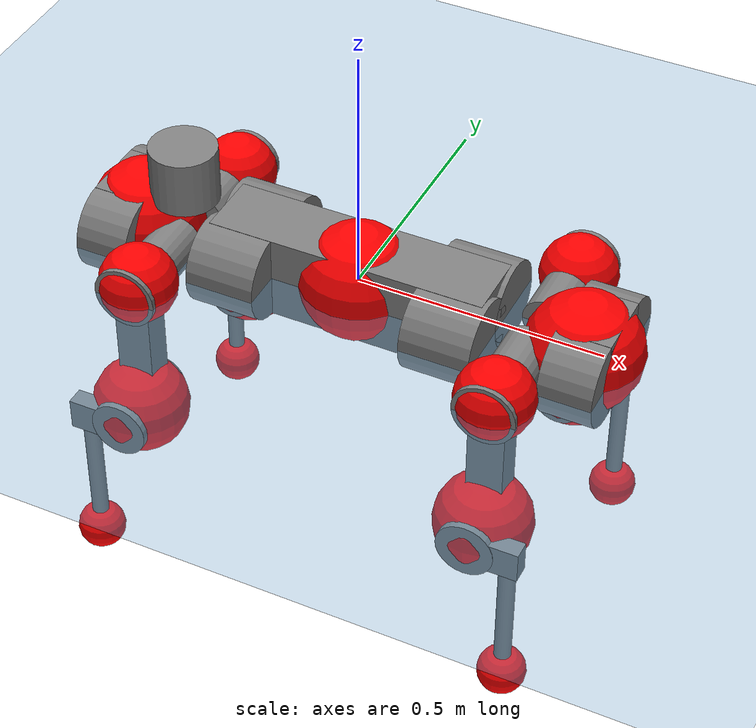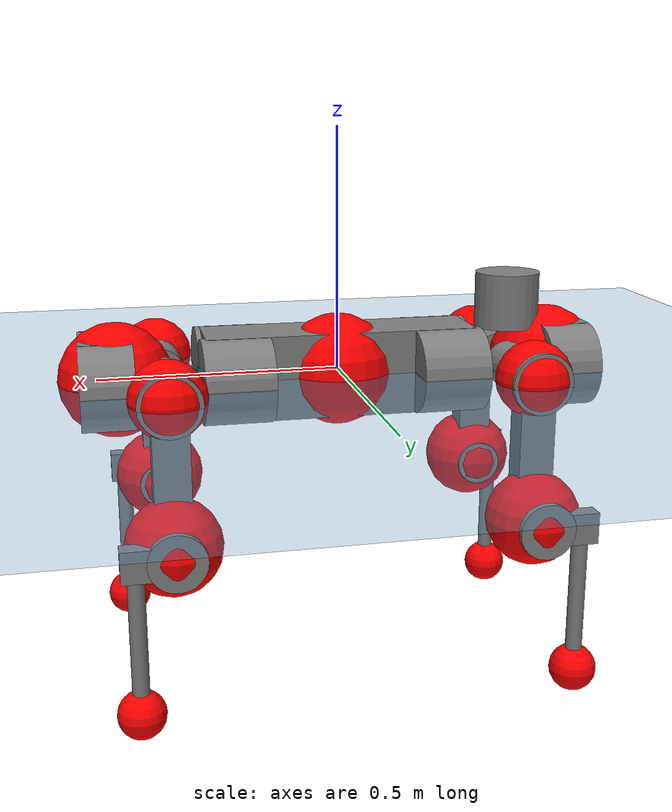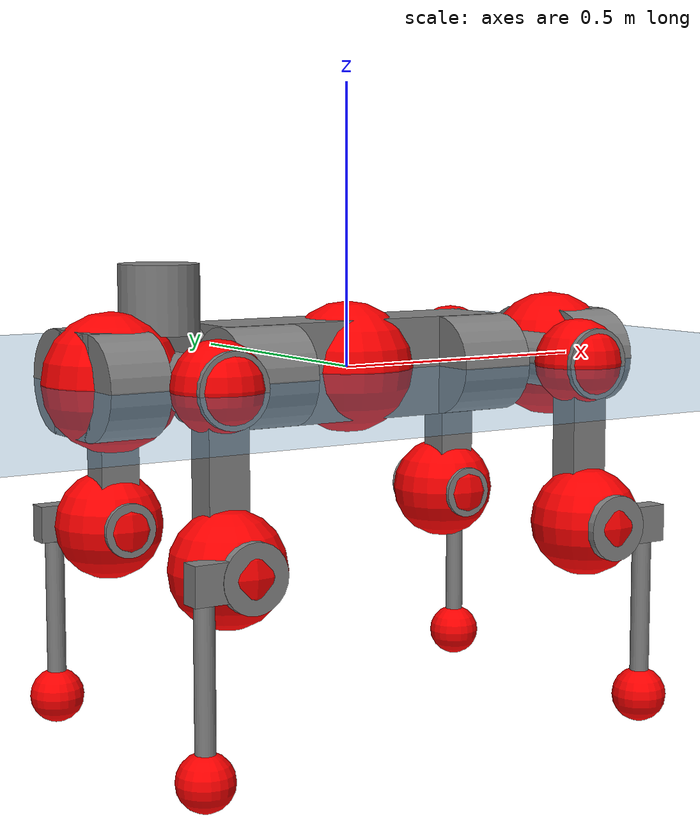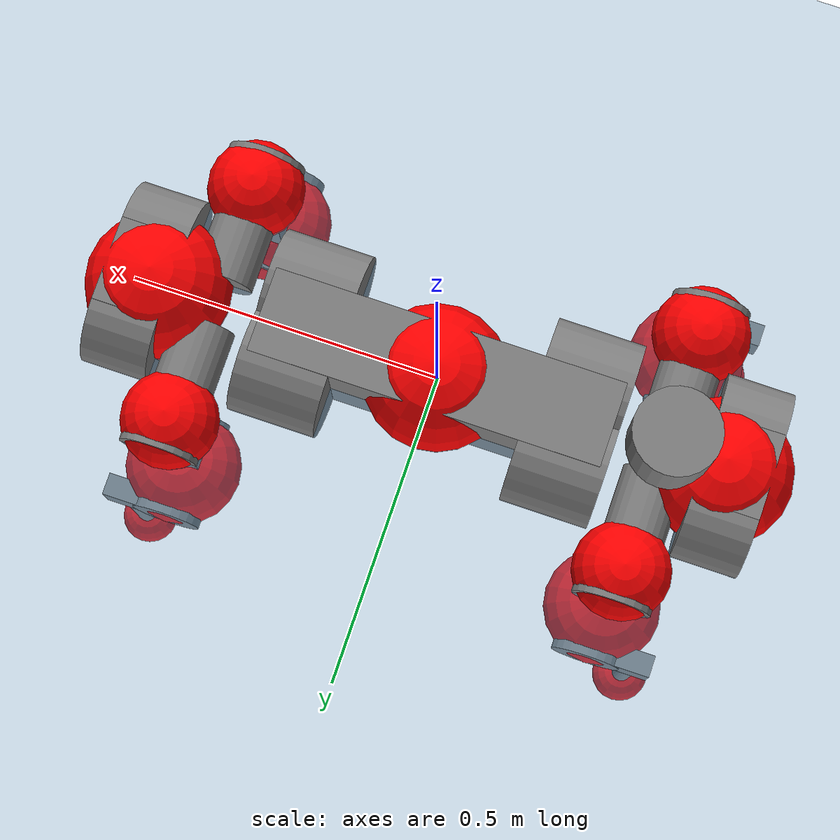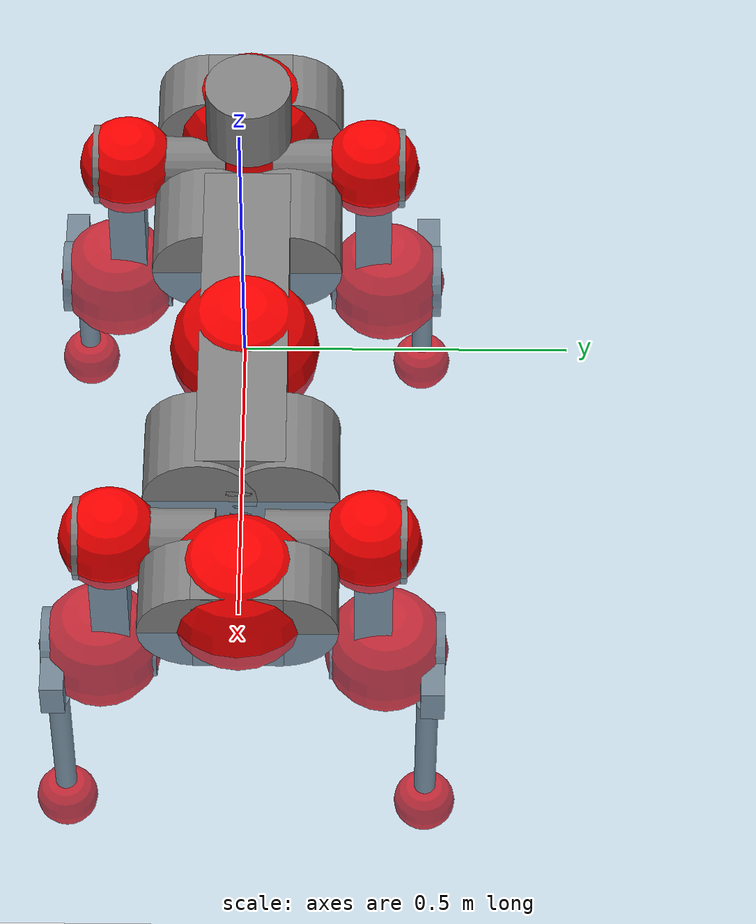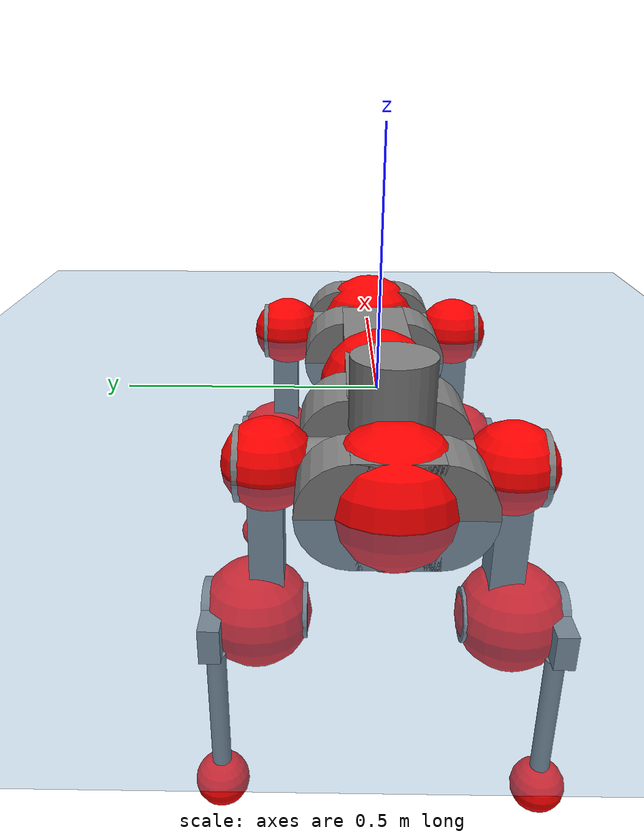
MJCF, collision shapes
<mujoco model="anymal_c">
  <compiler angle="radian" assetdir="assets" balanceinertia="true" inertiafromgeom="false"/>

  <option timestep="0.005" density="1.2" viscosity="2e-05"/>

  <size nkey="1"/>

  <visual>
    <quality shadowsize="8192"/>
    <map shadowclip="0.5"/>
  </visual>

  <default>
    <default class="/">
      <material specular="0" shininess="0.25"/>
      <geom contype="0" conaffinity="0" group="1" solref="-1000 -80"/>
      <site size="0.01 0.005 0.005" group="5"/>
      <general forcelimited="true" forcerange="-80 80" biastype="affine" gainprm="80" biasprm="0 -80 -2"/>
      <default class="anymal_c">
        <joint armature="0.01" damping="0.01" frictionloss="0.1"/>
        <default class="visual">
          <geom type="mesh" group="2"/>
          <default class="visual_zflip"/>
        </default>
        <default class="collision">
          <geom type="cylinder" group="3"/>
          <default class="foot">
            <geom size="0.03 0 0" type="sphere" condim="6" priority="1" friction="0.8 0.02 0.01" solimp="0.015 1 0.03"/>
          </default>
        </default>
      </default>
      <default class="reward_collision_sphere">
        <geom group="5" rgba="1 0 0 1"/>
      </default>
    </default>
  </default>

  <asset>
    <texture type="skybox" colorspace="auto" name="//unnamed_texture_0" builtin="gradient" rgb1="0.95 0.95 0.95" rgb2="0.95 0.95 0.95" width="100" height="600"/>
    <texture type="2d" colorspace="auto" name="texplane" builtin="checker" rgb1="0.345 0.575 0.748" rgb2="0.345 0.575 0.748" markrgb="1 1 1" width="512" height="512"/>
    <texture type="2d" colorspace="linear" name="base" file="base.png"/>
    <texture type="2d" colorspace="linear" name="top_shell" file="top_shell.png"/>
    <texture type="2d" colorspace="linear" name="bottom_shell" file="bottom_shell.png"/>
    <texture type="2d" colorspace="linear" name="remote" file="remote.png"/>
    <texture type="2d" colorspace="linear" name="hatch" file="hatch.png"/>
    <texture type="2d" colorspace="linear" name="handle" file="handle.png"/>
    <texture type="2d" colorspace="linear" name="face" file="face.png"/>
    <texture type="2d" colorspace="linear" name="battery" file="battery.png"/>
    <texture type="2d" colorspace="linear" name="lidar_cage" file="lidar_cage.png"/>
    <texture type="2d" colorspace="linear" name="depth_camera" file="depth_camera.png"/>
    <texture type="2d" colorspace="linear" name="wide_angle_camera" file="wide_angle_camera.png"/>
    <texture type="2d" colorspace="linear" name="lidar" file="lidar.png"/>
    <texture type="2d" colorspace="linear" name="drive" file="drive.png"/>
    <texture type="2d" colorspace="linear" name="hip_l" file="hip_l.png"/>
    <texture type="2d" colorspace="linear" name="shank_l" file="shank_l.png"/>
    <texture type="2d" colorspace="linear" name="foot" file="foot.png"/>
    <texture type="2d" colorspace="linear" name="thigh" file="thigh.png"/>
    <texture type="2d" colorspace="linear" name="shank_r" file="shank_r.png"/>
    <texture type="2d" colorspace="linear" name="hip_r" file="hip_r.png"/>
    <material name="MatPlane" class="/" texture="texplane" texuniform="true" texrepeat="2 2" specular="0.9" shininess="0.5"/>
    <material name="black_plastic" class="/" rgba="0.007 0.007 0.007 1"/>
    <material name="green" class="/" rgba="0.052 0.178 0.033 1"/>
    <material name="red" class="/" rgba="0.178 0.006 0.005 1"/>
    <material name="yellow" class="/" rgba="0.178 0.119 0.006 1"/>
    <material name="lwl" class="/" rgba="0.8 0.8 0.8 1"/>
    <material name="base" class="/" texture="base"/>
    <material name="top_shell" class="/" texture="top_shell"/>
    <material name="bottom_shell" class="/" texture="bottom_shell"/>
    <material name="hip_l" class="/" texture="hip_l"/>
    <material name="thigh" class="/" texture="thigh"/>
    <material name="shank_l" class="/" texture="shank_l"/>
    <material name="foot" class="/" texture="foot"/>
    <material name="hip_r" class="/" texture="hip_r"/>
    <material name="shank" class="/" texture="shank_r"/>
    <material name="hatch" class="/" texture="hatch"/>
    <material name="remote" class="/" texture="remote"/>
    <material name="handle" class="/" texture="handle"/>
    <material name="face" class="/" texture="face"/>
    <material name="depth_camera" class="/" texture="depth_camera"/>
    <material name="wide_angle_camera" class="/" texture="wide_angle_camera"/>
    <material name="battery" class="/" texture="battery"/>
    <material name="lidar_cage" class="/" texture="lidar_cage"/>
    <material name="lidar" class="/" texture="lidar"/>
    <material name="drive" class="/" texture="drive"/>
    <mesh name="base_0" class="/" file="base_0.obj"/>
    <mesh name="base_1" class="/" file="base_1.obj"/>
    <mesh name="base_2" class="/" file="base_2.obj"/>
    <mesh name="base_3" class="/" file="base_3.obj"/>
    <mesh name="base_4" class="/" file="base_4.obj"/>
    <mesh name="base_5" class="/" file="base_5.obj"/>
    <mesh name="top_shell" class="/" file="top_shell.obj"/>
    <mesh name="bottom_shell" class="/" file="bottom_shell.obj"/>
    <mesh name="remote" class="/" file="remote.obj"/>
    <mesh name="handle" class="/" file="handle.obj"/>
    <mesh name="face" class="/" file="face.obj"/>
    <mesh name="wide_angle_camera" class="/" file="wide_angle_camera.obj"/>
    <mesh name="depth_camera" class="/" file="depth_camera.obj"/>
    <mesh name="battery" class="/" file="battery.obj"/>
    <mesh name="lidar_cage" class="/" file="lidar_cage.obj"/>
    <mesh name="lidar" class="/" file="lidar.obj"/>
    <mesh name="drive" class="/" file="drive.obj"/>
    <mesh name="hip_l" class="/" file="hip_l.obj"/>
    <mesh name="thigh" class="/" file="thigh.obj"/>
    <mesh name="shank_l" class="/" file="shank_l.obj"/>
    <mesh name="foot" class="/" file="foot.obj"/>
    <mesh name="hip_r" class="/" file="hip_r.obj"/>
    <mesh name="hatch" class="/" file="hatch.obj"/>
    <mesh name="shank_r" class="/" file="shank_r.obj"/>
  </asset>

  <worldbody>
    <geom name="floor" class="/" size="100 100 0.125" type="plane" group="0" material="MatPlane"/>
    <light name="toplight_shadow" class="/" pos="0 0 5" dir="0.0990148 0.0990148 -0.990148" type="directional" ambient="0.04 0.04 0.04" diffuse="0.55 0.55 0.55" specular="0.12 0.12 0.12"/>
    <light name="toplight_fill" class="/" pos="0 0 5" dir="0.0990148 0.0990148 -0.990148" type="directional" castshadow="false" ambient="0.04 0.04 0.04" diffuse="0.3 0.3 0.3" specular="0.08 0.08 0.08"/>
    <body name="trunk" childclass="anymal_c" pos="0.000535623 -0.00062427 0.000172419" quat="1 7.09473e-05 -1.20096e-05 0.000133363">
      <inertial pos="0.00237637 -0.000629286 0.0495094" quat="0.501724 0.498639 0.50287 0.496743" mass="17.4039" diaginertia="0.722124 0.351128 0.224415"/>
      <joint name="//unnamed_joint_0" type="free" armature="0" damping="0" frictionloss="0"/>
      <geom name="//unnamed_geom_1" class="visual" material="green" mesh="base_0"/>
      <geom name="//unnamed_geom_2" class="visual" material="yellow" mesh="base_1"/>
      <geom name="//unnamed_geom_3" class="visual" material="red" mesh="base_2"/>
      <geom name="//unnamed_geom_4" class="visual" material="black_plastic" mesh="base_3"/>
      <geom name="//unnamed_geom_5" class="visual" material="lwl" mesh="base_4"/>
      <geom name="//unnamed_geom_6" class="visual" material="base" mesh="base_5"/>
      <geom name="trunk_1" class="collision" size="0.282636 0.0682225 0.0877146" type="box"/>
      <geom name="trunk_2" class="collision" size="0.0877146 0.070659" pos="0.222669 0.0625441 0" quat="0.707107 0 0.707107 0"/>
      <geom name="trunk_3" class="collision" size="0.0877146 0.070659" pos="-0.222669 0.0625441 0" quat="0.707107 0 0.707107 0"/>
      <geom name="trunk_4" class="collision" size="0.0877146 0.070659" pos="0.222669 -0.0625441 0" quat="0.707107 0 0.707107 0"/>
      <geom name="trunk_5" class="collision" size="0.0877146 0.070659" pos="-0.222669 -0.0625441 0" quat="0.707107 0 0.707107 0"/>
      <geom name="//unnamed_geom_12" class="visual" material="top_shell" mesh="top_shell"/>
      <geom name="//unnamed_geom_13" class="visual" material="bottom_shell" mesh="bottom_shell"/>
      <geom name="//unnamed_geom_14" class="visual" material="remote" mesh="remote"/>
      <geom name="//unnamed_geom_15" class="visual" material="handle" mesh="handle"/>
      <geom name="//unnamed_geom_16" class="visual" pos="0.424351 0 0" quat="1 0 0 0" material="face" mesh="face"/>
      <geom name="trunk_6" class="collision" size="0.0536034 0.0682225 0.0877146" pos="0.480658 0 0" type="box"/>
      <geom name="//unnamed_geom_18" class="collision" size="0.0877146 0.0536034" pos="0.480658 0.0625441 0" quat="0.707107 0 0.707107 0"/>
      <geom name="//unnamed_geom_19" class="collision" size="0.0877146 0.0536034" pos="0.480658 -0.0625441 0" quat="0.707107 0 0.707107 0"/>
      <geom name="//unnamed_geom_20" class="visual" pos="0.472621 0 -0.0292611" quat="0.965926 0 0.258819 0" material="depth_camera" mesh="depth_camera"/>
      <geom name="//unnamed_geom_21" class="visual" pos="0.525192 0 0.0150683" material="wide_angle_camera" mesh="wide_angle_camera"/>
      <geom name="//unnamed_geom_22" class="visual_zflip" pos="-0.424351 0 0" quat="0 0 0 1" material="face" mesh="face"/>
      <geom name="trunk_7" class="collision" size="0.0536034 0.0682225 0.0877146" pos="-0.480658 0 0" quat="0 0 0 1" type="box"/>
      <geom name="//unnamed_geom_24" class="collision" size="0.0877146 0.0536034" pos="-0.480658 -0.0625441 0" quat="0 -0.707107 0 0.707107"/>
      <geom name="//unnamed_geom_25" class="collision" size="0.0877146 0.0536034" pos="-0.480658 0.0625441 0" quat="0 -0.707107 0 0.707107"/>
      <geom name="//unnamed_geom_26" class="visual" pos="-0.472621 0 -0.0292611" quat="0 -0.258819 0 0.965926" material="depth_camera" mesh="depth_camera"/>
      <geom name="//unnamed_geom_27" class="visual_zflip" pos="-0.525192 0 0.0150683" quat="0 0 0 1" material="wide_angle_camera" mesh="wide_angle_camera"/>
      <geom name="//unnamed_geom_28" class="visual" material="battery" mesh="battery"/>
      <geom name="//unnamed_geom_29" class="visual" pos="0 0.0666058 0.0293715" quat="0.683013 -0.183013 0.183013 0.683013" material="depth_camera" mesh="depth_camera"/>
      <geom name="//unnamed_geom_30" class="visual" pos="0 -0.0666058 0.0293715" quat="0.683013 0.183013 0.183013 -0.683013" material="depth_camera" mesh="depth_camera"/>
      <geom name="//unnamed_geom_31" class="visual" pos="-0.372651 0 0.0739827" quat="1 0 0 0" material="lidar_cage" mesh="lidar_cage"/>
      <geom name="trunk_8" class="collision" size="0.0682225 0.0584764" pos="-0.372651 0 0.134377"/>
      <geom name="//unnamed_geom_33" class="visual" pos="-0.372651 -5.11829e-05 0.143134" quat="0.707107 0 0 -0.707107" material="lidar" mesh="lidar"/>
      <geom name="//unnamed_geom_34" class="visual" pos="0.307027 0.0929629 -1.95065e-09" quat="0.258819 0.965926 0 0" material="drive" mesh="drive"/>
      <geom name="//unnamed_geom_35" class="visual" pos="0.307027 -0.0929629 1.95065e-09" quat="0.258819 -0.965926 0 0" material="drive" mesh="drive"/>
      <geom name="//unnamed_geom_36" class="visual" pos="-0.307027 0.0929629 1.95065e-09" quat="0 0 0.965926 -0.258819" material="drive" mesh="drive"/>
      <geom name="//unnamed_geom_37" class="visual" pos="-0.307027 -0.0929629 -1.95065e-09" quat="0 0 -0.965926 -0.258819" material="drive" mesh="drive"/>
      <geom name="//unnamed_geom_38" class="visual" pos="0.118757 0 0.0734795" quat="1 0 0 0" material="hatch" mesh="hatch"/>
      <geom name="//unnamed_geom_39" class="reward_collision_sphere" size="0.116953"/>
      <geom name="//unnamed_geom_40" class="reward_collision_sphere" size="0.116953" pos="0.460695 0 0"/>
      <geom name="//unnamed_geom_41" class="reward_collision_sphere" size="0.116953" pos="-0.460695 0 0"/>
      <site name="imu" pos="0.255224 0.00536648 0.0408336" size="0.00974607"/>
      <camera name="track" pos="0 -1.78697 0" quat="0.707107 0.707107 0 0" mode="trackcom"/>
      <camera name="ego_camera" pos="0.460695 0 -0.0402627" quat="-0.5 -0.5 0.5 0.5"/>
      <body name="LF_HIP" pos="0.308067 0.0932896 0.00147069" quat="0.25873 0.96595 -2.11204e-05 6.40656e-05">
        <inertial pos="0.057175 -0.0127827 -0.00843445" quat="-0.127572 0.709898 -0.135212 0.679329" mass="2.57001" diaginertia="0.00657313 0.00282912 0.00339934"/>
        <joint name="LF_HAA" pos="0 0 0" axis="0.999942 -0.00987282 0.00435248" range="-0.717856 0.488392" armature="0.00921366" damping="0.0128347" frictionloss="0.0929055"/>
        <geom name="//unnamed_geom_42" class="visual" pos="0 -0.000114748 1.88472e-05" quat="0.258819 -0.965926 0 0" material="hip_l" mesh="hip_l"/>
        <geom name="//unnamed_geom_43" class="visual" pos="0.0613236 -0.0726314 -0.0427702" quat="0.183013 -0.683013 0.683013 0.183013" material="drive" mesh="drive"/>
        <geom name="//unnamed_geom_44" class="collision" size="0.0487304 0.0682225" pos="0.0613236 -0.0106859 -0.00695035" quat="-0.353553 -0.612372 0.612372 -0.353553"/>
        <body name="LF_THIGH" pos="0.0626391 -0.0661279 -0.0418911" quat="0.183287 -0.682788 0.68318 0.182952">
          <inertial pos="0.0320254 0.000107177 -0.248577" quat="0.993271 -0.00521781 -0.0768187 0.0865111" mass="2.84374" diaginertia="0.0340902 0.0171106 0.0043528"/>
          <joint name="LF_HFE" pos="0 0 0" axis="0.999985 -0.00336227 -0.00436223" range="-3.15518 3.13903" armature="0.00978634" damping="0.0141608" frictionloss="0.102081"/>
          <geom name="//unnamed_geom_45" class="visual" pos="0.00259203 4.08443e-06 0" quat="0.707107 0 0 -0.707107" material="thigh" mesh="thigh"/>
          <geom name="//unnamed_geom_46" class="collision" size="0.0633495 0.0389843" pos="0.0409506 0 0" quat="0.5 0.5 -0.5 -0.5"/>
          <geom name="//unnamed_geom_47" class="collision" size="0.0365478 0.0292382 0.137726" pos="0.030713 0 -0.142242" quat="0.707107 0 0 -0.707107" type="box"/>
          <geom name="//unnamed_geom_48" class="visual" pos="0.102684 0 -0.286872" quat="1 0 0 0" material="drive" mesh="drive"/>
          <geom name="//unnamed_geom_49" class="collision" size="0.0487304 0.0682225" pos="0.0310201 0 -0.286872" quat="0.707107 0 0.707107 0"/>
          <geom name="//unnamed_geom_50" class="reward_collision_sphere" size="0.0779686" pos="0.0255941 0 0"/>
          <body name="LF_SHANK" pos="0.102983 -0.00183187 -0.287608" quat="1 8.07638e-05 0.000296871 3.76043e-05">
            <inertial pos="0.00464879 -0.0551011 -0.0810988" quat="0.993253 -0.11254 0.000517077 -0.0279934" mass="0.532625" diaginertia="0.0113481 0.00520517 0.00114119"/>
            <joint name="LF_KFE" pos="0 0 0" axis="0.999999 -0.00124415 0.000438684" range="-3.13616 3.12898" armature="0.00985875" damping="0.00925203" frictionloss="0.0977758"/>
            <geom name="//unnamed_geom_51" class="visual" pos="0.000845204 0.00450667 0" quat="0.707107 0 0 -0.707107" material="shank_l" mesh="shank_l"/>
            <geom name="LF_kfe_act" class="collision" size="0.0584764 0.0194921" pos="0.0204753 0 0" quat="0.5 0.5 -0.5 -0.5"/>
            <geom name="//unnamed_geom_53" class="collision" size="0.0560389 0.032893 0.0185175" pos="0.0204753 -0.0513746 0" quat="0.5 0.5 -0.5 -0.5" type="box"/>
            <geom name="//unnamed_geom_54" class="visual" pos="0.0133599 -0.0771299 -0.34019" quat="0.382683 0 0 -0.92388" material="foot" mesh="foot"/>
            <geom name="LF_calf" class="collision" size="0.0170556 0.137665" pos="0.0133601 -0.0785822 -0.170095" quat="0.707107 0 0 -0.707107"/>
            <geom name="LF_foot" class="foot" size="0.0295008" pos="0.0133601 -0.0785822 -0.317542" quat="0.707107 0 0 -0.707107"/>
            <geom name="//unnamed_geom_57" class="reward_collision_sphere" size="0.0974607" pos="-0.0511883 0 0"/>
            <geom name="//unnamed_geom_58" class="reward_collision_sphere" size="0.0487304" pos="0.0133601 -0.0785822 -0.317542"/>
            <site name="LF_foot" class="foot" pos="0.0133601 -0.0785822 -0.317542" quat="0.707107 0 0 -0.707107" size="0.00974607"/>
          </body>
        </body>
      </body>
      <body name="RF_HIP" pos="0.306372 -0.0921184 0.000393368" quat="0.258593 -0.965986 -0.000131907 -0.000250585">
        <inertial pos="0.059402 0.0138396 -0.00922845" quat="0.138661 0.676856 0.12761 0.711586" mass="2.6221" diaginertia="0.0066977 0.00286464 0.00344492"/>
        <joint name="RF_HAA" pos="0 0 0" axis="0.99999 -0.00443446 -0.00028857" range="-0.511088 0.729212" armature="0.00976224" damping="0.0121918" frictionloss="0.0968172"/>
        <geom name="//unnamed_geom_59" class="visual" pos="0 0.000114747 1.88472e-05" quat="0.258819 0.965926 0 0" material="hip_r" mesh="hip_r"/>
        <geom name="//unnamed_geom_60" class="visual" pos="0.0613236 0.0726314 -0.0427702" quat="0.183013 0.683013 0.683013 -0.183013" material="drive" mesh="drive"/>
        <geom name="//unnamed_geom_61" class="collision" size="0.0487304 0.0682225" pos="0.0613236 0.0106859 -0.00695035" quat="-0.353553 0.612372 0.612372 0.353553"/>
        <body name="RF_THIGH" pos="0.0614958 0.0655301 -0.0432997" quat="0.183187 0.682971 0.683066 -0.182794">
          <inertial pos="0.0325917 0.00154014 -0.246893" quat="0.992771 -0.00514647 -0.0806842 0.0887122" mass="2.83097" diaginertia="0.0337714 0.0170701 0.00430554"/>
          <joint name="RF_HFE" pos="0 0 0" axis="0.99999 -0.00401486 0.00199233" stiffness="0.00598408" range="-3.14938 3.1199" armature="0.00972958" damping="0.00769868" frictionloss="0.0999432"/>
          <geom name="//unnamed_geom_62" class="visual" pos="0.00259203 4.08443e-06 0" quat="0.707107 0 0 -0.707107" material="thigh" mesh="thigh"/>
          <geom name="//unnamed_geom_63" class="collision" size="0.0633495 0.0389843" pos="0.0409506 0 0" quat="0.5 0.5 0.5 0.5"/>
          <geom name="//unnamed_geom_64" class="collision" size="0.0365478 0.0292382 0.137726" pos="0.030713 0 -0.142242" quat="0.707107 0 0 0.707107" type="box"/>
          <geom name="//unnamed_geom_65" class="visual" pos="0.102684 0 -0.286872" quat="1 0 0 0" material="drive" mesh="drive"/>
          <geom name="//unnamed_geom_66" class="collision" size="0.0487304 0.0682225" pos="0.0310201 0 -0.286872" quat="0.707107 0 0.707107 0"/>
          <geom name="//unnamed_geom_67" class="reward_collision_sphere" size="0.0779686" pos="0.0255941 0 0"/>
          <body name="RF_SHANK" pos="0.101865 -0.000106525 -0.28664" quat="1 0.000561647 0.000297178 -0.00026275">
            <inertial pos="0.00752068 0.0555413 -0.0807902" quat="0.993001 0.115809 -0.00218285 0.0230936" mass="0.540413" diaginertia="0.0112254 0.00524746 0.00116808"/>
            <joint name="RF_KFE" pos="0 0 0" axis="0.999998 -0.00181919 0.000208529" range="-3.15123 3.14097" armature="0.00997917" damping="0.0120146" frictionloss="0.0995814"/>
            <geom name="//unnamed_geom_68" class="visual" pos="0.000845199 -0.00450666 0" quat="0.707107 0 0 0.707107" material="shank" mesh="shank_r"/>
            <geom name="RF_kfe_act" class="collision" size="0.0584764 0.0194921" pos="0.0204753 0 0" quat="0.5 0.5 0.5 0.5"/>
            <geom name="//unnamed_geom_70" class="collision" size="0.0560389 0.032893 0.0185175" pos="0.0204753 0.0513746 0" quat="0.5 0.5 0.5 0.5" type="box"/>
            <geom name="//unnamed_geom_71" class="visual" pos="0.0133604 0.0771299 -0.34019" quat="0.382683 0 0 0.92388" material="foot" mesh="foot"/>
            <geom name="RF_calf" class="collision" size="0.0170556 0.137665" pos="0.0133601 0.0785822 -0.170095" quat="0.707107 0 0 0.707107"/>
            <geom name="RF_foot" class="foot" size="0.0294896" pos="0.0133601 0.0785822 -0.317542" quat="0.707107 0 0 0.707107"/>
            <geom name="//unnamed_geom_74" class="reward_collision_sphere" size="0.0974607" pos="-0.0511883 0 0"/>
            <geom name="//unnamed_geom_75" class="reward_collision_sphere" size="0.0487304" pos="0.0133601 0.0785822 -0.317542"/>
            <site name="RF_foot" class="foot" pos="0.0133601 0.0785822 -0.317542" quat="0.707107 0 0 0.707107" size="0.00974607"/>
          </body>
        </body>
      </body>
      <body name="LH_HIP" pos="-0.304657 0.0930258 0.000617911" quat="-3.40371e-05 1.77719e-05 0.965943 -0.258755">
        <inertial pos="0.0591755 0.011813 -0.00839783" quat="0.135896 0.679064 0.129586 0.709656" mass="2.60138" diaginertia="0.00657022 0.00279893 0.00338556"/>
        <joint name="LH_HAA" pos="0 0 0" axis="0.999994 -0.000351867 -0.00335777" range="-0.507528 0.708585" armature="0.00971013" damping="0.00935339" frictionloss="0.0993172"/>
        <geom name="//unnamed_geom_76" class="visual" pos="0 0.000114747 1.88472e-05" quat="-0.258819 -0.965926 0 0" material="hip_r" mesh="hip_r"/>
        <geom name="//unnamed_geom_77" class="visual" pos="0.0613236 0.0726314 -0.0427702" quat="0.183013 0.683013 0.683013 -0.183013" material="drive" mesh="drive"/>
        <geom name="//unnamed_geom_78" class="collision" size="0.0487304 0.0682225" pos="0.0613236 0.0106859 -0.00695035" quat="-0.353553 0.612372 0.612372 0.353553"/>
        <body name="LH_THIGH" pos="0.0598905 0.0641373 -0.0431502" quat="0.183104 0.682864 0.683139 -0.183008">
          <inertial pos="0.032075 0.00100456 -0.247365" quat="0.992666 -0.00431542 -0.081139 0.0895079" mass="2.8399" diaginertia="0.0340884 0.0168552 0.00421696"/>
          <joint name="LH_HFE" pos="0 0 0" axis="0.999999 0.000129194 -0.00140147" range="-3.15489 3.1233" armature="0.0101475" damping="0.00683086" frictionloss="0.0983176"/>
          <geom name="//unnamed_geom_79" class="visual" pos="0.00259203 4.08443e-06 0" quat="0.707107 0 0 -0.707107" material="thigh" mesh="thigh"/>
          <geom name="//unnamed_geom_80" class="collision" size="0.0633495 0.0389843" pos="0.0409506 0 0" quat="0.5 0.5 -0.5 -0.5"/>
          <geom name="//unnamed_geom_81" class="collision" size="0.0365478 0.0292382 0.137726" pos="0.030713 0 -0.142242" quat="0.707107 0 0 -0.707107" type="box"/>
          <geom name="//unnamed_geom_82" class="visual" pos="0.102684 0 -0.286872" quat="1 0 0 0" material="drive" mesh="drive"/>
          <geom name="//unnamed_geom_83" class="collision" size="0.0487304 0.0682225" pos="0.0310201 0 -0.286872" quat="0.707107 0 0.707107 0"/>
          <geom name="//unnamed_geom_84" class="reward_collision_sphere" size="0.0779686" pos="0.0255941 0 0"/>
          <body name="LH_SHANK" pos="0.10361 -0.000763066 -0.288632" quat="1 -0.000130561 -0.000719041 0.000484701">
            <inertial pos="0.00573975 0.054728 -0.0794647" quat="0.992872 0.115606 0.00227963 0.0288855" mass="0.541038" diaginertia="0.0114773 0.00532892 0.00115654"/>
            <joint name="LH_KFE" pos="0 0 0" axis="0.99998 -0.0063529 0.000165985" range="-3.13532 3.15644" armature="0.00993599" damping="0.00974038" frictionloss="0.0984435"/>
            <geom name="//unnamed_geom_85" class="visual" pos="0.000845199 -0.00450666 0" quat="-0.707107 0 0 -0.707107" material="shank" mesh="shank_r"/>
            <geom name="LH_kfe_act" class="collision" size="0.0584764 0.0194921" pos="0.0204753 0 0" quat="0.5 0.5 -0.5 -0.5"/>
            <geom name="//unnamed_geom_87" class="collision" size="0.0560389 0.032893 0.0185175" pos="0.0204753 0.0513746 0" quat="0.5 0.5 -0.5 -0.5" type="box"/>
            <geom name="//unnamed_geom_88" class="visual" pos="0.0133604 0.0771299 -0.34019" quat="-0.382683 0 0 -0.92388" material="foot" mesh="foot"/>
            <geom name="LH_calf" class="collision" size="0.0170556 0.137665" pos="0.0133601 0.0785822 -0.170095" quat="0.707107 0 0 -0.707107"/>
            <geom name="LH_foot" class="foot" size="0.0308283" pos="0.0133601 0.0785822 -0.317542" quat="0.707107 0 0 -0.707107"/>
            <geom name="//unnamed_geom_91" class="reward_collision_sphere" size="0.0974607" pos="-0.0511883 0 0"/>
            <geom name="//unnamed_geom_92" class="reward_collision_sphere" size="0.0487304" pos="0.0133601 0.0785822 -0.317542"/>
            <site name="LH_foot" class="foot" pos="0.0133601 0.0785822 -0.317542" quat="0.707107 0 0 -0.707107" size="0.00974607"/>
          </body>
        </body>
      </body>
      <body name="RH_HIP" pos="-0.308094 -0.0935213 -2.11384e-05" quat="2.58975e-05 -9.14607e-05 -0.966011 -0.258503">
        <inertial pos="0.0575515 -0.014709 -0.00866908" quat="-0.132668 0.710232 -0.132765 0.678486" mass="2.55452" diaginertia="0.00646743 0.00275598 0.00334225"/>
        <joint name="RH_HAA" pos="0 0 0" axis="0.99997 -0.00170878 -0.00757399" range="-0.722475 0.484566" armature="0.0098552" damping="0.00600668" frictionloss="0.0972296"/>
        <geom name="//unnamed_geom_93" class="visual" pos="0 -0.000114748 1.88472e-05" quat="-0.258819 0.965926 0 0" material="hip_l" mesh="hip_l"/>
        <geom name="//unnamed_geom_94" class="visual" pos="0.0613236 -0.0726314 -0.0427702" quat="-0.183013 0.683013 -0.683013 -0.183013" material="drive" mesh="drive"/>
        <geom name="//unnamed_geom_95" class="collision" size="0.0487304 0.0682225" pos="0.0613236 -0.0106859 -0.00695035" quat="0.353553 0.612372 -0.612372 0.353553"/>
        <body name="RH_THIGH" pos="0.0617387 -0.064428 -0.041873" quat="-0.18297 0.68304 -0.683041 -0.182847">
          <inertial pos="0.0318352 -5.14638e-07 -0.247352" quat="0.993199 -0.0119276 -0.0823492 0.0814413" mass="2.83946" diaginertia="0.0342352 0.0170807 0.00441781"/>
          <joint name="RH_HFE" pos="0 0 0" axis="0.999996 -0.00241624 -0.00125805" range="-3.13807 3.13095" armature="0.00981031" damping="0.00377545" frictionloss="0.102101"/>
          <geom name="//unnamed_geom_96" class="visual" pos="0.00259203 4.08443e-06 0" quat="0.707107 0 0 -0.707107" material="thigh" mesh="thigh"/>
          <geom name="//unnamed_geom_97" class="collision" size="0.0633495 0.0389843" pos="0.0409506 0 0" quat="0.5 0.5 0.5 0.5"/>
          <geom name="//unnamed_geom_98" class="collision" size="0.0365478 0.0292382 0.137726" pos="0.030713 0 -0.142242" quat="0.707107 0 0 0.707107" type="box"/>
          <geom name="//unnamed_geom_99" class="visual" pos="0.102684 0 -0.286872" quat="1 0 0 0" material="drive" mesh="drive"/>
          <geom name="//unnamed_geom_100" class="collision" size="0.0487304 0.0682225" pos="0.0310201 0 -0.286872" quat="0.707107 0 0.707107 0"/>
          <geom name="//unnamed_geom_101" class="reward_collision_sphere" size="0.0779686" pos="0.0255941 0 0"/>
          <body name="RH_SHANK" pos="0.102381 0.000418011 -0.28703" quat="1 6.47062e-05 2.5675e-05 -0.000172459">
            <inertial pos="0.00524453 -0.0558729 -0.0802873" quat="0.992836 -0.116923 -0.00100826 -0.0245774" mass="0.545259" diaginertia="0.0115186 0.00527476 0.00115306"/>
            <joint name="RH_KFE" pos="0 0 0" axis="0.999993 -0.000547319 -0.003713" stiffness="0.000307516" range="-3.12819 3.15413" armature="0.00980101" damping="0.0101685" frictionloss="0.102738"/>
            <geom name="//unnamed_geom_102" class="visual" pos="0.000845204 0.00450667 0" quat="0.707107 0 0 -0.707107" material="shank_l" mesh="shank_l"/>
            <geom name="RH_kfe_act" class="collision" size="0.0584764 0.0194921" pos="0.0204753 0 0" quat="0.5 0.5 0.5 0.5"/>
            <geom name="//unnamed_geom_104" class="collision" size="0.0560389 0.032893 0.0185175" pos="0.0204753 -0.0513746 0" quat="0.5 0.5 0.5 0.5" type="box"/>
            <geom name="//unnamed_geom_105" class="visual" pos="0.0133599 -0.0771299 -0.34019" quat="0.382683 0 0 -0.92388" material="foot" mesh="foot"/>
            <geom name="RH_calf" class="collision" size="0.0170556 0.137665" pos="0.0133601 -0.0785822 -0.170095" quat="0.707107 0 0 0.707107"/>
            <geom name="RH_foot" class="foot" size="0.027595" pos="0.0133601 -0.0785822 -0.317542" quat="0.707107 0 0 0.707107"/>
            <geom name="//unnamed_geom_108" class="reward_collision_sphere" size="0.0974607" pos="-0.0511883 0 0"/>
            <geom name="//unnamed_geom_109" class="reward_collision_sphere" size="0.0487304" pos="0.0133601 -0.0785822 -0.317542"/>
            <site name="RH_foot" class="foot" pos="0.0133601 -0.0785822 -0.317542" quat="0.707107 0 0 0.707107" size="0.00974607"/>
          </body>
        </body>
      </body>
    </body>
  </worldbody>

  <contact>
    <pair class="/" geom1="floor" geom2="LF_foot" name="//unnamed_contact_0"/>
    <pair class="/" geom1="floor" geom2="RF_foot" name="//unnamed_contact_1"/>
    <pair class="/" geom1="floor" geom2="LH_foot" name="//unnamed_contact_2"/>
    <pair class="/" geom1="floor" geom2="RH_foot" name="//unnamed_contact_3"/>
  </contact>

  <actuator>
    <general name="LF_HAA" class="/" joint="LF_HAA" forcerange="-78.9422 78.9422" gainprm="79.226" biasprm="0 -79.226 -1.87681"/>
    <general name="LF_HFE" class="/" joint="LF_HFE" forcerange="-77.7814 77.7814" gainprm="79.226" biasprm="0 -79.226 -1.87681"/>
    <general name="LF_KFE" class="/" joint="LF_KFE" forcerange="-75.5932 75.5932" gainprm="79.226" biasprm="0 -79.226 -1.87681"/>
    <general name="RF_HAA" class="/" joint="RF_HAA" forcerange="-78.6733 78.6733" gainprm="79.226" biasprm="0 -79.226 -1.87681"/>
    <general name="RF_HFE" class="/" joint="RF_HFE" forcerange="-81.0112 81.0112" gainprm="79.226" biasprm="0 -79.226 -1.87681"/>
    <general name="RF_KFE" class="/" joint="RF_KFE" forcerange="-75.5931 75.5931" gainprm="79.226" biasprm="0 -79.226 -1.87681"/>
    <general name="LH_HAA" class="/" joint="LH_HAA" forcerange="-78.3233 78.3233" gainprm="79.226" biasprm="0 -79.226 -1.87681"/>
    <general name="LH_HFE" class="/" joint="LH_HFE" forcerange="-76.0876 76.0876" gainprm="79.226" biasprm="0 -79.226 -1.87681"/>
    <general name="LH_KFE" class="/" joint="LH_KFE" forcerange="-81.4729 81.4729" gainprm="79.226" biasprm="0 -79.226 -1.87681"/>
    <general name="RH_HAA" class="/" joint="RH_HAA" forcerange="-79.0169 79.0169" gainprm="79.226" biasprm="0 -79.226 -1.87681"/>
    <general name="RH_HFE" class="/" joint="RH_HFE" forcerange="-77.0119 77.0119" gainprm="79.226" biasprm="0 -79.226 -1.87681"/>
    <general name="RH_KFE" class="/" joint="RH_KFE" forcerange="-74.0355 74.0355" gainprm="79.226" biasprm="0 -79.226 -1.87681"/>
  </actuator>

  <sensor>
    <gyro site="imu" name="imu_angular_velocity"/>
    <velocimeter site="imu" name="imu_linear_velocity"/>
    <framelinvel objtype="site" objname="LF_foot" name="LF_foot_global_linear_velocity"/>
    <framelinvel objtype="site" objname="RF_foot" name="RF_foot_global_linear_velocity"/>
    <framelinvel objtype="site" objname="LH_foot" name="LH_foot_global_linear_velocity"/>
    <framelinvel objtype="site" objname="RH_foot" name="RH_foot_global_linear_velocity"/>
  </sensor>

  <keyframe>
    <key name="home" qpos="0 0 0.55 1 0 0 0 0 0.4 -0.8 0 -0.4 0.8 0 -0.4 0.8 0 0.4 -0.8"/>
  </keyframe>
</mujoco>
